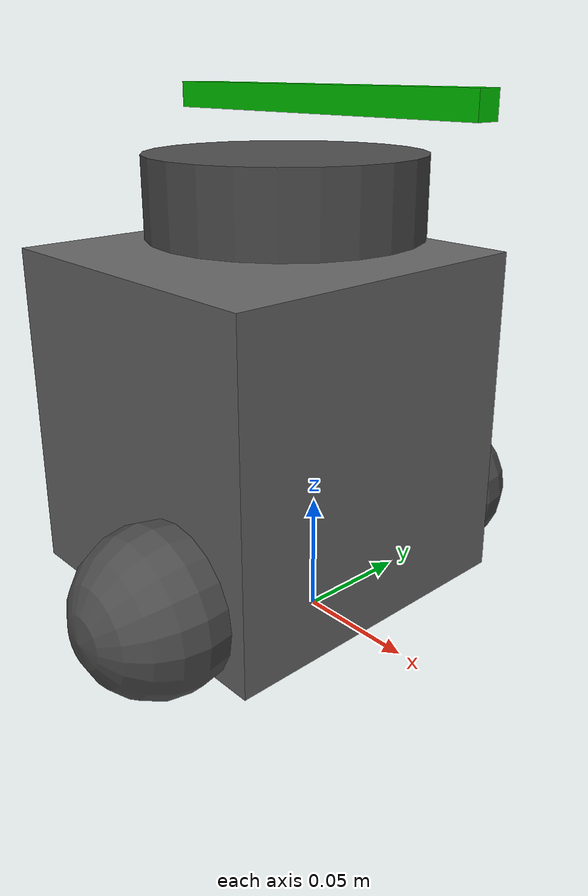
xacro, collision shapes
<?xml version="1.0"?>
<robot xmlns:xacro="http://www.ros.org/wiki/xacro"  name="robot">

    <xacro:arg name="use_ros2_control" default="true"/>
    <xacro:arg name="sim_mode" default="false"/>

    <xacro:include filename="robot_core.xacro" />

    <xacro:if value="$(arg use_ros2_control)">
        <xacro:include filename="ros2_control.xacro" />
    </xacro:if>
    <xacro:unless value="$(arg use_ros2_control)">
        <xacro:include filename="gazebo_control.xacro" />
    </xacro:unless>
    <xacro:include filename="lidar.xacro" />
    <xacro:include filename="arm.xacro" />

</robot>

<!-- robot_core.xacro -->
<robot xmlns:xacro="http://www.ros.org/wiki/xacro">

    <xacro:include filename="inertial_macros.xacro" />

    <xacro:property name="chassis_length" value="0.140" />
    <xacro:property name="chassis_width" value="0.140" />
    <xacro:property name="chassis_height" value="0.143" />
    <xacro:property name="chassis_mass" value="1.0" />
    <xacro:property name="wheel_radius" value="0.033" />
    <xacro:property name="wheel_thickness" value="0.026" />
    <xacro:property name="wheel_mass" value="0.05" />
    <xacro:property name="wheel_offset_x" value="0.226" />
    <xacro:property name="wheel_offset_y" value="0.08" />
    <xacro:property name="wheel_offset_z" value="0.01" />
    <xacro:property name="caster_wheel_radius" value="0.0056" />
    <xacro:property name="caster_wheel_mass" value="0.01" />
    <xacro:property name="caster_wheel_offset_x" value="-0.081" />
    <xacro:property name="caster_wheel_offset_z" value="-0.004" />

    <!-- Init colour -->
    <material name="black">
        <color rgba="0.0 0.0 0.0 1.0" />
    </material>

    <material name="dark">
        <color rgba="0.3 0.3 0.3 1.0" />
    </material>

    <material name="light_black">
        <color rgba="0.4 0.4 0.4 1.0" />
    </material>

    <material name="blue">
        <color rgba="0.0 0.0 0.8 1.0" />
    </material>

    <material name="green">
        <color rgba="0.0 0.8 0.0 1.0" />
    </material>

    <material name="grey">
        <color rgba="0.5 0.5 0.5 1.0" />
    </material>

    <material name="orange">
        <color rgba="1.0 0.4235 0.0392 1.0" />
    </material>

    <material name="brown">
        <color rgba="0.8706 0.8118 0.7647 1.0" />
    </material>

    <material name="red">
        <color rgba="0.8 0.0 0.0 1.0" />
    </material>

    <material name="white">
        <color rgba="1.0 1.0 1.0 1.0" />
    </material>

    <link name="base_footprint" />

    <joint name="base_joint" type="fixed">
        <parent link="base_footprint" />
        <child link="base_link" />
        <origin xyz="0.0 0.0 0.010" rpy="0 0 0" />
    </joint>

    <link name="base_link">
        <visual>
            <origin xyz="-0.032 0 0.0" rpy="0 0 0" />
            <geometry>
                <mesh
                    filename="package://turtlebot3_gazebo/models/turtlebot3_common/meshes/burger_base.dae"
                    scale="0.001 0.001 0.001" />
            </geometry>
            <material name="light_black" />
        </visual>

        <collision>
            <origin xyz="-0.032 0 0.070" rpy="0 0 0" />
            <geometry>
                <box size="0.140 0.140 0.143" />
            </geometry>
        </collision>

        <xacro:inertial_box mass="0.5" x="${chassis_length}" y="${chassis_width}"
            z="${chassis_height}">
            <origin xyz="-0.05 0 0" rpy="0 0 0" />
        </xacro:inertial_box>
    </link>

    <joint name="wheel_left_joint" type="continuous">
        <parent link="base_link" />
        <child link="wheel_left_link" />
        <origin xyz="0.0 0.08 0.023" rpy="-1.57 0 0" />
        <axis xyz="0 0 1" />
    </joint>

    <link name="wheel_left_link">
        <visual>
            <origin xyz="0 0 0" rpy="1.57 0 0" />
            <geometry>
                <mesh
                    filename="package://turtlebot3_gazebo/models/turtlebot3_common/meshes/tire.dae"
                    scale="0.001 0.001 0.001" />
            </geometry>
            <material name="dark" />
        </visual>

        <collision name="wheel_left_collision">
            <origin xyz="0 0 0" rpy="0 0 0" />
            <geometry>
                <sphere radius="0.033" />
            </geometry>
        </collision>

        <xacro:inertial_cylinder mass="${wheel_mass}" length="${wheel_thickness}"
            radius="${wheel_radius}">
            <origin xyz="0 0 0" rpy="0 0 0" />
        </xacro:inertial_cylinder>
    </link>

    <joint name="wheel_right_joint" type="continuous">
        <parent link="base_link" />
        <child link="wheel_right_link" />
        <origin xyz="0.0 -0.080 0.023" rpy="-1.57 0 0" />
        <axis xyz="0 0 1" />
    </joint>

    <link name="wheel_right_link">
        <visual>
            <origin xyz="0 0 0" rpy="1.57 0 0" />
            <geometry>
                <mesh
                    filename="package://turtlebot3_gazebo/models/turtlebot3_common/meshes/tire.dae"
                    scale="0.001 0.001 0.001" />
            </geometry>
            <material name="dark" />
        </visual>

        <collision name="wheel_right_collision">
            <origin xyz="0 0 0" rpy="0 0 0" />
            <geometry>
                <sphere radius="0.033" />
            </geometry>
        </collision>

        <xacro:inertial_cylinder mass="${wheel_mass}" length="${wheel_thickness}"
            radius="${wheel_radius}">
            <origin xyz="0 0 0" rpy="0 0 0" />
        </xacro:inertial_cylinder>
    </link>

    <gazebo reference="caster_back_link">
        <material>Gazebo/White</material>
        <mu1 value="0.001" />
        <mu2 value="0.001" />
    </gazebo>

    <!-- CASTER WHEEL LINK -->

    <joint name="caster_wheel_joint" type="fixed">
        <parent link="base_link" />
        <child link="caster_wheel" />
        <origin xyz="${caster_wheel_offset_x} 0 ${caster_wheel_offset_z}" />
    </joint>

    <link name="caster_wheel">
        <visual>
            <geometry>
                <sphere radius="${caster_wheel_radius}" />
            </geometry>
            <material name="white" />
        </visual>
        <collision>
            <geometry>
                <sphere radius="${caster_wheel_radius}" />
            </geometry>
        </collision>
        <xacro:inertial_sphere mass="${caster_wheel_mass}" radius="${caster_wheel_radius}">
            <origin xyz="0 0 0" rpy="0 0 0" />
        </xacro:inertial_sphere>
    </link>

    <gazebo reference="caster_wheel">
        <material>Gazebo/White</material>
        <mu1 value="0.001" />
        <mu2 value="0.001" />
    </gazebo>
</robot>

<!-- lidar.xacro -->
<robot xmlns:xacro="http://www.ros.org/wiki/xacro">

    <joint name="laser_joint" type="fixed">
        <parent link="base_link" />
        <child link="laser_frame" />
        <origin xyz="-0.032 0 0.172" rpy="0 0 0" />
    </joint>

    <link name="laser_frame">
        <visual>
            <origin xyz="0 0 0.0" rpy="0 0 0" />
            <geometry>
                <mesh filename="package://turtlebot3_gazebo/models/turtlebot3_common/meshes/lds.dae"
                    scale="0.001 0.001 0.001" />
            </geometry>
            <material name="dark" />
        </visual>

        <collision>
            <origin xyz="0.015 0 -0.0065" rpy="0 0 0" />
            <geometry>
                <cylinder length="0.0315" radius="0.055" />
            </geometry>
        </collision>

        <xacro:inertial_cylinder mass="0.1" length="0.0315" radius="0.055">
            <origin xyz="0 0 0" rpy="0 0 0" />
        </xacro:inertial_cylinder>
    </link>

    <!-- TB3 OG Gazebo Lidar(Laser scan) -->
    <gazebo reference="laser_frame">
        <sensor name="hls_lfcd_lds" type="ray">
            <always_on>true</always_on>
            <visualize>true</visualize>
            <pose>0 0 0 0 0 0</pose>
            <update_rate>5</update_rate>
            <ray>
                <scan>
                    <horizontal>
                        <samples>360</samples>
                        <resolution>1.000000</resolution>
                        <min_angle>0.000000</min_angle>
                        <max_angle>6.280000</max_angle>
                    </horizontal>
                </scan>
                <range>
                    <min>0.120000</min>
                    <max>3.5</max>
                    <resolution>0.015000</resolution>
                </range>
                <noise>
                    <type>gaussian</type>
                    <mean>0.0</mean>
                    <stddev>0.01</stddev>
                </noise>
            </ray>
            <plugin name="turtlebot3_laserscan" filename="libgazebo_ros_ray_sensor.so">
                <ros>
                    <remapping>~/out:=scan</remapping>
                </ros>
                <output_type>sensor_msgs/LaserScan</output_type>
                <frame_name>base_scan</frame_name>
            </plugin>
        </sensor>
    </gazebo>

    <!-- Articubot Lidar -->

</robot>

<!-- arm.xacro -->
<robot xmlns:xacro="http://www.ros.org/wiki/xacro">
    <!-- Add a new link for the arm -->
    <link name="arm_link">
        <visual>
            <origin xyz="0 0 0" rpy="0 0 0" />
            <geometry>
                <box size="0.15 0.01 0.01" />
            </geometry>
            <material name="green" />
        </visual>
        <collision>
            <origin xyz="0 0 0" rpy="0 0 0" />
            <geometry>
                <box size="0.15 0.01 0.01" />
            </geometry>
        </collision>
        <inertial>
            <mass value="0.02" />
            <inertia ixx="0.001" ixy="0" ixz="0" iyy="0.001" iyz="0" izz="0.001" />
        </inertial>
    </link>

    <!-- Add a joint to attach the arm to the base or another link -->
    <joint name="arm_joint" type="revolute">
        <parent link="base_link" />
        <child link="arm_link" />
        <origin xyz="0 0 0.201" rpy="0 0 0" />
        <axis xyz="0 0 1" />
        <limit lower="-1.57" upper="1.57" effort="5" velocity="1.0" />
    </joint>
</robot>
